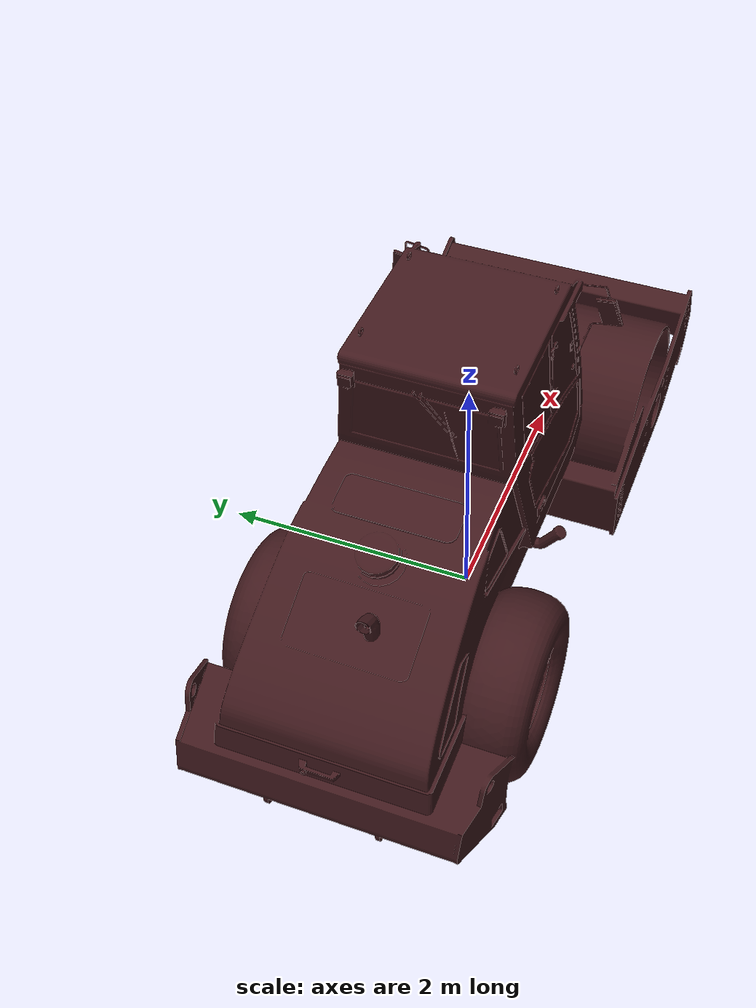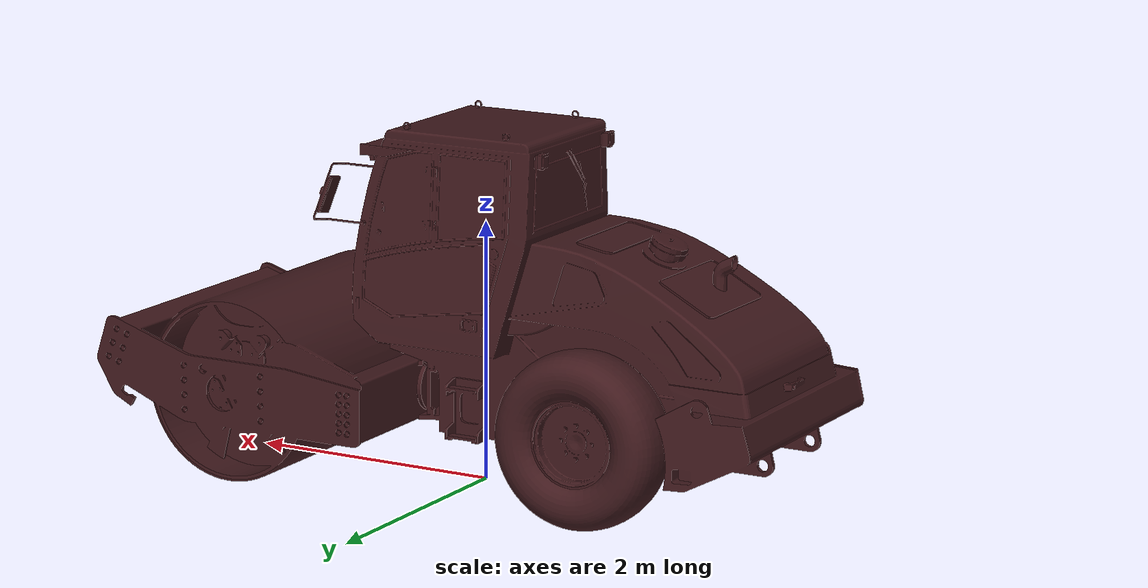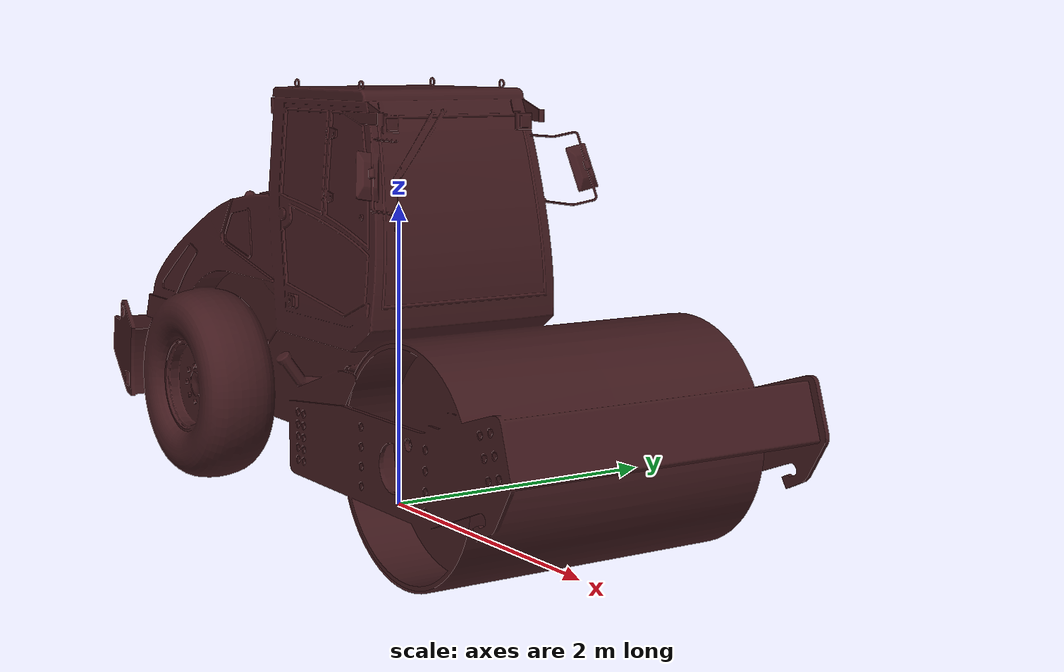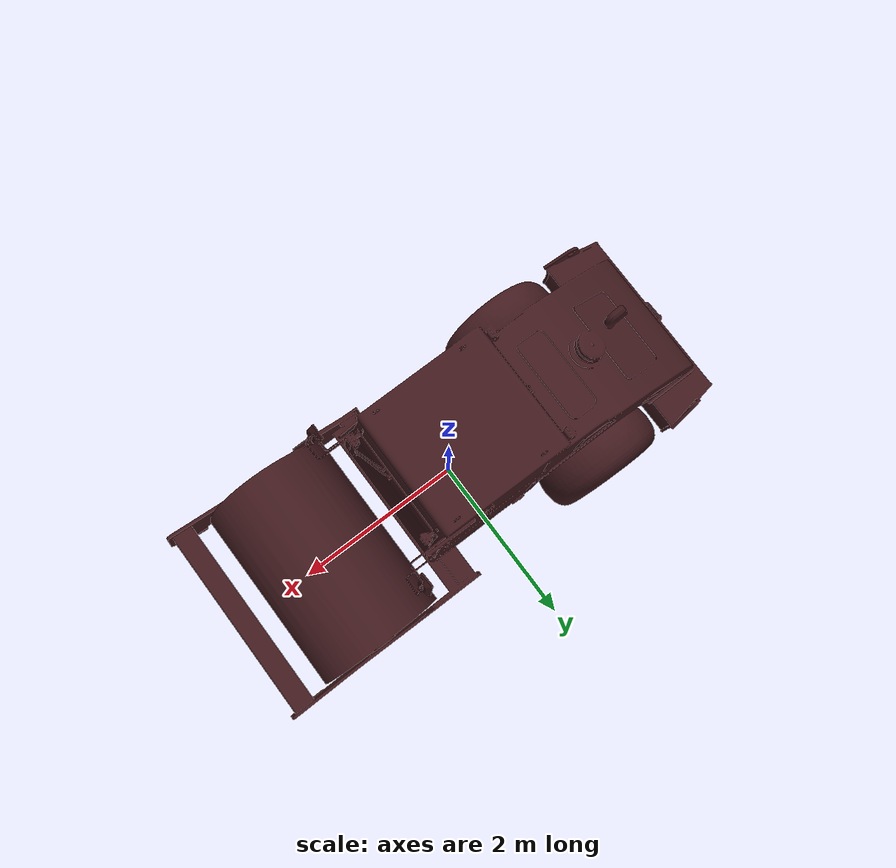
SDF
<?xml version="1.0" encoding="UTF-8"?>
<!--
  Copyright 2024 DeepX, Inc. All rights reserved

-->
<sdf version="1.9">
   <model name='SV513'>
      <include merge="true">
         <uri>SV513_base</uri>
      </include>
        <!-- ACTUATION PLUGINS -->

        <!-- LOCOMOTION PLUGINS -->
        <plugin name="gz::sim::systems::TrackedVehicle" filename="gz-sim-tracked-vehicle-system">
            <left_track><link>left_track</link></left_track><!--define-->
            <right_track><link>right_track</link></right_track><!--define-->
            <tracks_separation>2.16</tracks_separation><!--edit-->
            <tracks_height>2.0</tracks_height><!--edit-->
            <steering_efficiency>0.5</steering_efficiency><!--edit-->
        </plugin>

        <plugin name='gz::sim::systems::TrackController' filename='gz-sim-track-controller-system'>
            <link>left_track</link>
            <min_velocity>-3.0</min_velocity>
            <max_velocity>3.0</max_velocity>
        </plugin>

        <plugin name='gz::sim::systems::TrackController' filename='gz-sim-track-controller-system'>
            <link>right_track</link>
            <min_velocity>-3.0</min_velocity>
            <max_velocity>3.0</max_velocity>
        </plugin>

      <!-- Moving Forward: W -->
      <plugin filename="gz-sim-triggered-publisher-system"
              name="gz::sim::systems::TriggeredPublisher">
          <input type="gz.msgs.Int32" topic="/keyboard/keypress">
              <match field="data">87</match>
          </input>
          <output type="gz.msgs.Twist" topic="/model/SV513/cmd_vel">
              linear: {x: 3.0}, angular: {z: 0.0}
          </output>
      </plugin>

      <!-- Moving Backward: X -->
      <plugin filename="gz-sim-triggered-publisher-system"
              name="gz::sim::systems::TriggeredPublisher">
          <input type="gz.msgs.Int32" topic="/keyboard/keypress">
              <match field="data">88</match>
          </input>
          <output type="gz.msgs.Twist" topic="/model/SV513/cmd_vel">
              linear: {x: -3.0}, angular: {z: 0.0}
          </output>
      </plugin>

      <!-- Stop: S -->
      <plugin filename="gz-sim-triggered-publisher-system"
              name="gz::sim::systems::TriggeredPublisher">
          <input type="gz.msgs.Int32" topic="/keyboard/keypress">
              <match field="data">83</match>
          </input>
          <output type="gz.msgs.Twist" topic="/model/SV513/cmd_vel">
              linear: {x: 0.0}, angular: {z: 0.0}
          </output>
      </plugin>

      <!-- Left: A -->
      <plugin filename="gz-sim-triggered-publisher-system"
              name="gz::sim::systems::TriggeredPublisher">
          <input type="gz.msgs.Int32" topic="/keyboard/keypress">
              <match field="data">65</match>
          </input>
          <output type="gz.msgs.Twist" topic="/model/SV513/cmd_vel">
              linear: {x: 0.0}, angular: {z: 1.0}
          </output>
      </plugin>

      <!-- Right: D -->
      <plugin filename="gz-sim-triggered-publisher-system"
              name="gz::sim::systems::TriggeredPublisher">
          <input type="gz.msgs.Int32" topic="/keyboard/keypress">
              <match field="data">68</match>
          </input>
          <output type="gz.msgs.Twist" topic="/model/SV513/cmd_vel">
              linear: {x: 0.0}, angular: {z: -1.0}
          </output>
      </plugin>

      <!-- Forward Left: Q -->
      <plugin filename="gz-sim-triggered-publisher-system"
              name="gz::sim::systems::TriggeredPublisher">
          <input type="gz.msgs.Int32" topic="/keyboard/keypress">
              <match field="data">81</match>
          </input>
          <output type="gz.msgs.Twist" topic="/model/SV513/cmd_vel">
              linear: {x: 3.0}, angular: {z: 1.0}
          </output>
      </plugin>

      <!-- Forward Right: E -->
      <plugin filename="gz-sim-triggered-publisher-system"
              name="gz::sim::systems::TriggeredPublisher">
          <input type="gz.msgs.Int32" topic="/keyboard/keypress">
              <match field="data">69</match>
          </input>
          <output type="gz.msgs.Twist" topic="/model/SV513/cmd_vel">
              linear: {x: 3.0}, angular: {z: -1.0}
          </output>
      </plugin>

      <!-- Back Left: Z -->
      <plugin filename="gz-sim-triggered-publisher-system"
              name="gz::sim::systems::TriggeredPublisher">
          <input type="gz.msgs.Int32" topic="/keyboard/keypress">
              <match field="data">90</match>
          </input>
          <output type="gz.msgs.Twist" topic="/model/SV513/cmd_vel">
              linear: {x: -3.0}, angular: {z: 1.0}
          </output>
      </plugin>

      <!-- Back Right: C -->
      <plugin filename="gz-sim-triggered-publisher-system"
              name="gz::sim::systems::TriggeredPublisher">
          <input type="gz.msgs.Int32" topic="/keyboard/keypress">
              <match field="data">67</match>
          </input>
          <output type="gz.msgs.Twist" topic="/model/SV513/cmd_vel">
              linear: {x: -3.0}, angular: {z: -1.0}
          </output>
      </plugin>
   </model>
</sdf>

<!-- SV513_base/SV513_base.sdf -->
<!--
  Copyright 2024 DeepX, Inc. All rights reserved

  SV513 vibratory roller model
-->
<sdf version="1.9">
    <model name='SV513_base'>
        <pose>0 0 0 0 0 0</pose>

        <link name='SV513'>
            <pose>0 0 0 0 0 0</pose>
            <inertial>
                <mass>12000</mass>
                <inertia>
                    <ixx>2000</ixx>
                    <ixy>0</ixy>
                    <ixz>0</ixz>
                    <iyy>4000</iyy>
                    <iyz>0</iyz>
                    <izz>6000</izz>
                </inertia>
            </inertial>
            <visual name='visual'>
                <!--specify position relative to TF link-->
                <pose relative_to="chassis_link">0 0 0 0 0 0</pose>

                <geometry>
                    <mesh>
                        <scale>1 1 1</scale>
                        <uri>./meshes/SV513.stl</uri>
                    </mesh>
                </geometry>
                <material>
                    <!-- pbr and metal tags don't work -->
                    <ambient>0.25 0.1 0.115 1.0</ambient>
                    <diffuse>0.25 0.1 0.115 1.0</diffuse>
                    <specular>0.25 0.1 0.115 1.0</specular>
                </material>
            </visual>
        </link>

        <!-- TRACKS FOR LOCOMOTION -->
        <link name='left_track'>
            <pose>0 0.7 0.79 0 0 0</pose>
            <gravity>1</gravity>
            <kinematic>0</kinematic>
            <!-- Debug visual -->

            <collision name='left_track_collision'>
            <pose>0 0 0 0 0 0</pose>
            <geometry>
                <box>
                    <size>5.84 0.69 1.58</size>
                </box>
            </geometry>
            <surface>
                <friction>
                   <ode>
                       <mu>0.7</mu>
                       <mu2>150</mu2>
                       <fdir1>0 1 0</fdir1>
                   </ode>
                </friction>
            </surface>
            </collision>
        </link>

        <link name='right_track'>
            <pose>0 -0.7 0.79 0 0 0</pose>
            <gravity>1</gravity>
            <kinematic>0</kinematic>
            <!-- Debug visual -->

            <collision name='left_track_collision'>
                <pose>0 0 0 0 0 0</pose>
                <geometry>
                    <box>
                        <size>5.84 0.69 1.58</size>
                    </box>
                </geometry>
                <surface>
                    <friction>
                        <ode>
                            <mu>0.7</mu>
                            <mu2>150</mu2>
                            <fdir1>0 1 0</fdir1>
                        </ode>
                    </friction>
                </surface>
            </collision>
        </link>

        <joint name='left_track_j' type='fixed'>
            <child>left_track</child>
            <parent>SV513</parent>
        </joint>
        <joint name='right_track_j' type='fixed'>
            <child>right_track</child>
            <parent>SV513</parent>
        </joint>

    </model>
</sdf>
